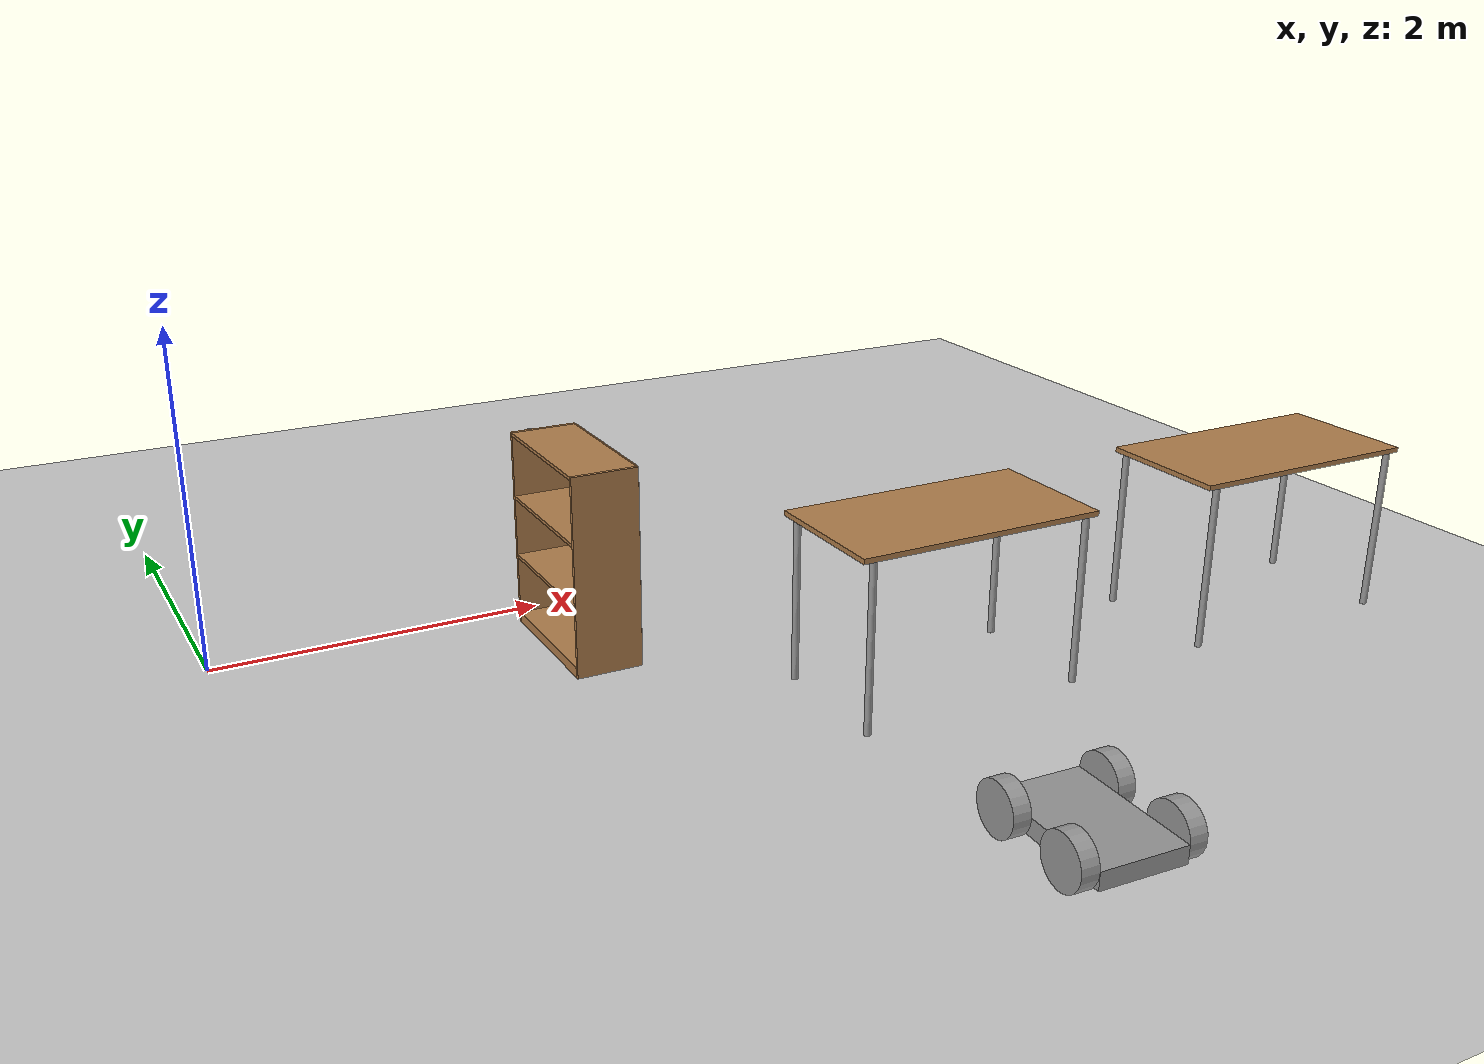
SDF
<sdf version="1.6">
 <world name="default">
  <model name="ground_plane">
   <static>1</static>
   <link name="link">
    <collision name="collision">
     <geometry><plane><normal>0 0 1</normal><size>100 100</size></plane></geometry>
     <surface><friction><ode><mu>100</mu><mu2>50</mu2></ode></friction></surface>
    </collision>
    <visual name="visual">
     <cast_shadows>0</cast_shadows>
     <geometry><plane><normal>0 0 1</normal><size>100 100</size></plane></geometry>
     <material>
      <script><uri>file://media/materials/scripts/gazebo.material</uri><name>Gazebo/Grey</name></script>
     </material>
    </visual>
   </link>
  </model>
  <model name="bookshelf_1">
   <static>1</static>
   <link name="link">
    <inertial><mass>1</mass></inertial>
    <collision name="back">
     <pose>0 0.005 0.6 0 -0 0</pose>
     <geometry><box><size>0.9 0.01 1.2</size></box></geometry>
    </collision>
    <visual name="visual1">
     <pose>0 0.005 0.6 0 -0 0</pose>
     <geometry><box><size>0.9 0.01 1.2</size></box></geometry>
     <material>
      <script><uri>file://media/materials/scripts/gazebo.material</uri><name>Gazebo/Wood</name></script>
     </material>
    </visual>
    <collision name="left_side">
     <pose>0.45 -0.195 0.6 0 -0 0</pose>
     <geometry><box><size>0.02 0.4 1.2</size></box></geometry>
    </collision>
    <visual name="visual2">
     <pose>0.45 -0.195 0.6 0 -0 0</pose>
     <geometry><box><size>0.02 0.4 1.2</size></box></geometry>
     <material>
      <script><uri>file://media/materials/scripts/gazebo.material</uri><name>Gazebo/Wood</name></script>
     </material>
    </visual>
    <collision name="right_side">
     <pose>-0.45 -0.195 0.6 0 -0 0</pose>
     <geometry><box><size>0.02 0.4 1.2</size></box></geometry>
    </collision>
    <visual name="visual3">
     <pose>-0.45 -0.195 0.6 0 -0 0</pose>
     <geometry><box><size>0.02 0.4 1.2</size></box></geometry>
     <material>
      <script><uri>file://media/materials/scripts/gazebo.material</uri><name>Gazebo/Wood</name></script>
     </material>
    </visual>
    <collision name="bottom">
     <pose>0 -0.195 0.03 0 -0 0</pose>
     <geometry><box><size>0.88 0.4 0.06</size></box></geometry>
    </collision>
    <visual name="visual4">
     <pose>0 -0.195 0.03 0 -0 0</pose>
     <geometry><box><size>0.88 0.4 0.06</size></box></geometry>
     <material>
      <script><uri>file://media/materials/scripts/gazebo.material</uri><name>Gazebo/Wood</name></script>
     </material>
    </visual>
    <collision name="top">
     <pose>0 -0.195 1.19 0 -0 0</pose>
     <geometry><box><size>0.88 0.4 0.02</size></box></geometry>
    </collision>
    <visual name="visual5">
     <pose>0 -0.195 1.19 0 -0 0</pose>
     <geometry><box><size>0.88 0.4 0.02</size></box></geometry>
     <material>
      <script><uri>file://media/materials/scripts/gazebo.material</uri><name>Gazebo/Wood</name></script>
     </material>
    </visual>
    <collision name="low_shelf">
     <pose>0 -0.195 0.43 0 -0 0</pose>
     <geometry><box><size>0.88 0.4 0.02</size></box></geometry>
    </collision>
    <visual name="visual6">
     <pose>0 -0.195 0.43 0 -0 0</pose>
     <geometry><box><size>0.88 0.4 0.02</size></box></geometry>
     <material>
      <script><uri>file://media/materials/scripts/gazebo.material</uri><name>Gazebo/Wood</name></script>
     </material>
    </visual>
    <collision name="high_shelf">
     <pose>0 -0.195 0.8 0 -0 0</pose>
     <geometry><box><size>0.88 0.4 0.02</size></box></geometry>
    </collision>
    <visual name="visual7">
     <pose>0 -0.195 0.8 0 -0 0</pose>
     <geometry><box><size>0.88 0.4 0.02</size></box></geometry>
     <material>
      <script><uri>file://media/materials/scripts/gazebo.material</uri><name>Gazebo/Wood</name></script>
     </material>
    </visual>
   </link>
   <pose>2.2247 -0.625547 0 0 0 -1.58004</pose>
  </model>
  <model name="table_0">
   <static>1</static>
   <link name="link">
    <collision name="surface">
     <pose>0 0 1 0 -0 0</pose>
     <geometry><box><size>1.5 0.8 0.03</size></box></geometry>
     <surface><friction><ode><mu>0.6</mu><mu2>0.6</mu2></ode></friction></surface>
    </collision>
    <visual name="visual1">
     <pose>0 0 1 0 -0 0</pose>
     <geometry><box><size>1.5 0.8 0.03</size></box></geometry>
     <material>
      <script><uri>file://media/materials/scripts/gazebo.material</uri><name>Gazebo/Wood</name></script>
     </material>
    </visual>
    <collision name="front_left_leg">
     <pose>0.68 0.38 0.5 0 -0 0</pose>
     <geometry><cylinder><radius>0.02</radius><length>1</length></cylinder></geometry>
    </collision>
    <visual name="front_left_leg">
     <pose>0.68 0.38 0.5 0 -0 0</pose>
     <geometry><cylinder><radius>0.02</radius><length>1</length></cylinder></geometry>
     <material>
      <script><uri>file://media/materials/scripts/gazebo.material</uri><name>Gazebo/Grey</name></script>
     </material>
    </visual>
    <collision name="front_right_leg">
     <pose>0.68 -0.38 0.5 0 -0 0</pose>
     <geometry><cylinder><radius>0.02</radius><length>1</length></cylinder></geometry>
    </collision>
    <visual name="front_right_leg">
     <pose>0.68 -0.38 0.5 0 -0 0</pose>
     <geometry><cylinder><radius>0.02</radius><length>1</length></cylinder></geometry>
     <material>
      <script><uri>file://media/materials/scripts/gazebo.material</uri><name>Gazebo/Grey</name></script>
     </material>
    </visual>
    <collision name="back_right_leg">
     <pose>-0.68 -0.38 0.5 0 -0 0</pose>
     <geometry><cylinder><radius>0.02</radius><length>1</length></cylinder></geometry>
    </collision>
    <visual name="back_right_leg">
     <pose>-0.68 -0.38 0.5 0 -0 0</pose>
     <geometry><cylinder><radius>0.02</radius><length>1</length></cylinder></geometry>
     <material>
      <script><uri>file://media/materials/scripts/gazebo.material</uri><name>Gazebo/Grey</name></script>
     </material>
    </visual>
    <collision name="back_left_leg">
     <pose>-0.68 0.38 0.5 0 -0 0</pose>
     <geometry><cylinder><radius>0.02</radius><length>1</length></cylinder></geometry>
    </collision>
    <visual name="back_left_leg">
     <pose>-0.68 0.38 0.5 0 -0 0</pose>
     <geometry><cylinder><radius>0.02</radius><length>1</length></cylinder></geometry>
     <material>
      <script><uri>file://media/materials/scripts/gazebo.material</uri><name>Gazebo/Grey</name></script>
     </material>
    </visual>
   </link>
   <pose>3.59261 -2.02108 0 0 -0 0</pose>
  </model>
  <model name="table_1">
   <static>1</static>
   <link name="link">
    <collision name="surface">
     <pose>0 0 1 0 -0 0</pose>
     <geometry><box><size>1.5 0.8 0.03</size></box></geometry>
     <surface><friction><ode><mu>0.6</mu><mu2>0.6</mu2></ode></friction></surface>
    </collision>
    <visual name="visual1">
     <pose>0 0 1 0 -0 0</pose>
     <geometry><box><size>1.5 0.8 0.03</size></box></geometry>
     <material>
      <script><uri>file://media/materials/scripts/gazebo.material</uri><name>Gazebo/Wood</name></script>
     </material>
    </visual>
    <collision name="front_left_leg">
     <pose>0.68 0.38 0.5 0 -0 0</pose>
     <geometry><cylinder><radius>0.02</radius><length>1</length></cylinder></geometry>
    </collision>
    <visual name="front_left_leg">
     <pose>0.68 0.38 0.5 0 -0 0</pose>
     <geometry><cylinder><radius>0.02</radius><length>1</length></cylinder></geometry>
     <material>
      <script><uri>file://media/materials/scripts/gazebo.material</uri><name>Gazebo/Grey</name></script>
     </material>
    </visual>
    <collision name="front_right_leg">
     <pose>0.68 -0.38 0.5 0 -0 0</pose>
     <geometry><cylinder><radius>0.02</radius><length>1</length></cylinder></geometry>
    </collision>
    <visual name="front_right_leg">
     <pose>0.68 -0.38 0.5 0 -0 0</pose>
     <geometry><cylinder><radius>0.02</radius><length>1</length></cylinder></geometry>
     <material>
      <script><uri>file://media/materials/scripts/gazebo.material</uri><name>Gazebo/Grey</name></script>
     </material>
    </visual>
    <collision name="back_right_leg">
     <pose>-0.68 -0.38 0.5 0 -0 0</pose>
     <geometry><cylinder><radius>0.02</radius><length>1</length></cylinder></geometry>
    </collision>
    <visual name="back_right_leg">
     <pose>-0.68 -0.38 0.5 0 -0 0</pose>
     <geometry><cylinder><radius>0.02</radius><length>1</length></cylinder></geometry>
     <material>
      <script><uri>file://media/materials/scripts/gazebo.material</uri><name>Gazebo/Grey</name></script>
     </material>
    </visual>
    <collision name="back_left_leg">
     <pose>-0.68 0.38 0.5 0 -0 0</pose>
     <geometry><cylinder><radius>0.02</radius><length>1</length></cylinder></geometry>
    </collision>
    <visual name="back_left_leg">
     <pose>-0.68 0.38 0.5 0 -0 0</pose>
     <geometry><cylinder><radius>0.02</radius><length>1</length></cylinder></geometry>
     <material>
      <script><uri>file://media/materials/scripts/gazebo.material</uri><name>Gazebo/Grey</name></script>
     </material>
    </visual>
   </link>
   <pose>5.91265 -1.99673 0 0 -0 0</pose>
  </model>
  <model name="car_bot_clone">
   <link name="link">
    <pose>0 0 0.2 0 -0 0</pose>
    <inertial>
     <mass>1</mass>
     <inertia>
      <ixx>0.166667</ixx>
      <ixy>0</ixy>
      <ixz>0</ixz>
      <iyy>0.166667</iyy>
      <iyz>0</iyz>
      <izz>0.166667</izz>
     </inertia>
    </inertial>
    <visual name="visual">
     <geometry><box><size>0.8 0.5 0.1</size></box></geometry>
     <material>
      <script><name>Gazebo/Grey</name><uri>file://media/materials/scripts/gazebo.material</uri></script>
      <shader type="pixel"><normal_map>__default__</normal_map></shader>
      <ambient>0.3 0.3 0.3 1</ambient>
      <diffuse>0.7 0.7 0.7 1</diffuse>
      <specular>0.01 0.01 0.01 1</specular>
      <emissive>0 0 0 1</emissive>
     </material>
    </visual>
    <collision name="collision">
     <geometry><box><size>0.8 0.5 0.1</size></box></geometry>
     <surface>
      <friction>
       <ode><mu>1</mu><mu2>1</mu2><fdir1>0 0 0</fdir1><slip1>0</slip1><slip2>0</slip2></ode>
       <torsional>
        <coefficient>1</coefficient>
        <patch_radius>0</patch_radius>
        <surface_radius>0</surface_radius>
        <use_patch_radius>1</use_patch_radius>
        <ode><slip>0</slip></ode>
       </torsional>
      </friction>
      <bounce><restitution_coefficient>0</restitution_coefficient><threshold>1e+06</threshold></bounce>
      <contact>
       <collide_without_contact>0</collide_without_contact>
       <collide_without_contact_bitmask>1</collide_without_contact_bitmask>
       <collide_bitmask>1</collide_bitmask>
       <ode>
        <soft_cfm>0</soft_cfm>
        <soft_erp>0.2</soft_erp>
        <kp>1e+13</kp>
        <kd>1</kd>
        <max_vel>0.01</max_vel>
        <min_depth>0</min_depth>
       </ode>
       <bullet>
        <split_impulse>1</split_impulse>
        <split_impulse_penetration_threshold>-0.01</split_impulse_penetration_threshold>
        <soft_cfm>0</soft_cfm>
        <soft_erp>0.2</soft_erp>
        <kp>1e+13</kp>
        <kd>1</kd>
       </bullet>
      </contact>
     </surface>
    </collision>
   </link>
   <link name="link_1">
    <pose>-0.25 -0.30063 0.245186 1.575 -0 0</pose>
    <inertial>
     <mass>1</mass>
     <inertia><ixx>0.145833</ixx><ixy>0</ixy><ixz>0</ixz><iyy>0.145833</iyy><iyz>0</iyz><izz>0.125</izz></inertia>
    </inertial>
    <visual name="visual">
     <geometry><cylinder><radius>0.15</radius><length>0.1</length></cylinder></geometry>
     <material>
      <lighting>1</lighting>
      <script><uri>file://media/materials/scripts/gazebo.material</uri><name>Gazebo/Grey</name></script>
      <shader type="pixel"><normal_map>__default__</normal_map></shader>
      <ambient>0.3 0.3 0.3 1</ambient>
      <diffuse>0.7 0.7 0.7 1</diffuse>
      <specular>0.01 0.01 0.01 1</specular>
      <emissive>0 0 0 1</emissive>
     </material>
    </visual>
    <collision name="collision">
     <geometry><cylinder><radius>0.15</radius><length>0.1</length></cylinder></geometry>
     <surface>
      <friction>
       <ode><mu>1</mu><mu2>1</mu2><fdir1>0 0 0</fdir1><slip1>0</slip1><slip2>0</slip2></ode>
       <torsional>
        <coefficient>1</coefficient>
        <patch_radius>0</patch_radius>
        <surface_radius>0</surface_radius>
        <use_patch_radius>1</use_patch_radius>
        <ode><slip>0</slip></ode>
       </torsional>
      </friction>
      <bounce><restitution_coefficient>0</restitution_coefficient><threshold>1e+06</threshold></bounce>
      <contact>
       <collide_without_contact>0</collide_without_contact>
       <collide_without_contact_bitmask>1</collide_without_contact_bitmask>
       <collide_bitmask>1</collide_bitmask>
       <ode>
        <soft_cfm>0</soft_cfm>
        <soft_erp>0.2</soft_erp>
        <kp>1e+13</kp>
        <kd>1</kd>
        <max_vel>0.01</max_vel>
        <min_depth>0</min_depth>
       </ode>
       <bullet>
        <split_impulse>1</split_impulse>
        <split_impulse_penetration_threshold>-0.01</split_impulse_penetration_threshold>
        <soft_cfm>0</soft_cfm>
        <soft_erp>0.2</soft_erp>
        <kp>1e+13</kp>
        <kd>1</kd>
       </bullet>
      </contact>
     </surface>
    </collision>
   </link>
   <link name="link_1_clone">
    <pose>-0.25 0.300631 0.245003 1.57501 -0 0</pose>
    <inertial>
     <mass>1</mass>
     <inertia><ixx>0.145833</ixx><ixy>0</ixy><ixz>0</ixz><iyy>0.145833</iyy><iyz>0</iyz><izz>0.125</izz></inertia>
    </inertial>
    <visual name="visual">
     <geometry><cylinder><radius>0.15</radius><length>0.1</length></cylinder></geometry>
     <material>
      <lighting>1</lighting>
      <script><uri>file://media/materials/scripts/gazebo.material</uri><name>Gazebo/Grey</name></script>
      <shader type="pixel"><normal_map>__default__</normal_map></shader>
      <ambient>0.3 0.3 0.3 1</ambient>
      <diffuse>0.7 0.7 0.7 1</diffuse>
      <specular>0.01 0.01 0.01 1</specular>
      <emissive>0 0 0 1</emissive>
     </material>
    </visual>
    <collision name="collision">
     <geometry><cylinder><radius>0.15</radius><length>0.1</length></cylinder></geometry>
     <surface>
      <friction>
       <ode><mu>1</mu><mu2>1</mu2><fdir1>0 0 0</fdir1><slip1>0</slip1><slip2>0</slip2></ode>
       <torsional>
        <coefficient>1</coefficient>
        <patch_radius>0</patch_radius>
        <surface_radius>0</surface_radius>
        <use_patch_radius>1</use_patch_radius>
        <ode><slip>0</slip></ode>
       </torsional>
      </friction>
      <bounce><restitution_coefficient>0</restitution_coefficient><threshold>1e+06</threshold></bounce>
      <contact>
       <collide_without_contact>0</collide_without_contact>
       <collide_without_contact_bitmask>1</collide_without_contact_bitmask>
       <collide_bitmask>1</collide_bitmask>
       <ode>
        <soft_cfm>0</soft_cfm>
        <soft_erp>0.2</soft_erp>
        <kp>1e+13</kp>
        <kd>1</kd>
        <max_vel>0.01</max_vel>
        <min_depth>0</min_depth>
       </ode>
       <bullet>
        <split_impulse>1</split_impulse>
        <split_impulse_penetration_threshold>-0.01</split_impulse_penetration_threshold>
        <soft_cfm>0</soft_cfm>
        <soft_erp>0.2</soft_erp>
        <kp>1e+13</kp>
        <kd>1</kd>
       </bullet>
      </contact>
     </surface>
    </collision>
   </link>
   <link name="link_1_clone_0_clone">
    <pose>0.25 -0.300633 0.244997 1.57502 -0 0</pose>
    <inertial>
     <mass>1</mass>
     <inertia><ixx>0.145833</ixx><ixy>0</ixy><ixz>0</ixz><iyy>0.145833</iyy><iyz>0</iyz><izz>0.125</izz></inertia>
    </inertial>
    <visual name="visual">
     <geometry><cylinder><radius>0.15</radius><length>0.1</length></cylinder></geometry>
     <material>
      <lighting>1</lighting>
      <script><uri>file://media/materials/scripts/gazebo.material</uri><name>Gazebo/Grey</name></script>
      <shader type="pixel"><normal_map>__default__</normal_map></shader>
      <ambient>0.3 0.3 0.3 1</ambient>
      <diffuse>0.7 0.7 0.7 1</diffuse>
      <specular>0.01 0.01 0.01 1</specular>
      <emissive>0 0 0 1</emissive>
     </material>
    </visual>
    <collision name="collision">
     <geometry><cylinder><radius>0.15</radius><length>0.1</length></cylinder></geometry>
     <surface>
      <friction>
       <ode><mu>1</mu><mu2>1</mu2><fdir1>0 0 0</fdir1><slip1>0</slip1><slip2>0</slip2></ode>
       <torsional>
        <coefficient>1</coefficient>
        <patch_radius>0</patch_radius>
        <surface_radius>0</surface_radius>
        <use_patch_radius>1</use_patch_radius>
        <ode><slip>0</slip></ode>
       </torsional>
      </friction>
      <bounce><restitution_coefficient>0</restitution_coefficient><threshold>1e+06</threshold></bounce>
      <contact>
       <collide_without_contact>0</collide_without_contact>
       <collide_without_contact_bitmask>1</collide_without_contact_bitmask>
       <collide_bitmask>1</collide_bitmask>
       <ode>
        <soft_cfm>0</soft_cfm>
        <soft_erp>0.2</soft_erp>
        <kp>1e+13</kp>
        <kd>1</kd>
        <max_vel>0.01</max_vel>
        <min_depth>0</min_depth>
       </ode>
       <bullet>
        <split_impulse>1</split_impulse>
        <split_impulse_penetration_threshold>-0.01</split_impulse_penetration_threshold>
        <soft_cfm>0</soft_cfm>
        <soft_erp>0.2</soft_erp>
        <kp>1e+13</kp>
        <kd>1</kd>
       </bullet>
      </contact>
     </surface>
    </collision>
   </link>
   <link name="link_1_clone_0_clone_clone">
    <pose>0.25 0.300634 0.245003 1.57503 -0 0</pose>
    <inertial>
     <mass>1</mass>
     <inertia><ixx>0.145833</ixx><ixy>0</ixy><ixz>0</ixz><iyy>0.145833</iyy><iyz>0</iyz><izz>0.125</izz></inertia>
    </inertial>
    <visual name="visual">
     <geometry><cylinder><radius>0.15</radius><length>0.1</length></cylinder></geometry>
     <material>
      <lighting>1</lighting>
      <script><uri>file://media/materials/scripts/gazebo.material</uri><name>Gazebo/Grey</name></script>
      <shader type="pixel"><normal_map>__default__</normal_map></shader>
      <ambient>0.3 0.3 0.3 1</ambient>
      <diffuse>0.7 0.7 0.7 1</diffuse>
      <specular>0.01 0.01 0.01 1</specular>
      <emissive>0 0 0 1</emissive>
     </material>
    </visual>
    <collision name="collision">
     <geometry><cylinder><radius>0.15</radius><length>0.1</length></cylinder></geometry>
     <surface>
      <friction>
       <ode><mu>1</mu><mu2>1</mu2><fdir1>0 0 0</fdir1><slip1>0</slip1><slip2>0</slip2></ode>
       <torsional>
        <coefficient>1</coefficient>
        <patch_radius>0</patch_radius>
        <surface_radius>0</surface_radius>
        <use_patch_radius>1</use_patch_radius>
        <ode><slip>0</slip></ode>
       </torsional>
      </friction>
      <bounce><restitution_coefficient>0</restitution_coefficient><threshold>1e+06</threshold></bounce>
      <contact>
       <collide_without_contact>0</collide_without_contact>
       <collide_without_contact_bitmask>1</collide_without_contact_bitmask>
       <collide_bitmask>1</collide_bitmask>
       <ode>
        <soft_cfm>0</soft_cfm>
        <soft_erp>0.2</soft_erp>
        <kp>1e+13</kp>
        <kd>1</kd>
        <max_vel>0.01</max_vel>
        <min_depth>0</min_depth>
       </ode>
       <bullet>
        <split_impulse>1</split_impulse>
        <split_impulse_penetration_threshold>-0.01</split_impulse_penetration_threshold>
        <soft_cfm>0</soft_cfm>
        <soft_erp>0.2</soft_erp>
        <kp>1e+13</kp>
        <kd>1</kd>
       </bullet>
      </contact>
     </surface>
    </collision>
   </link>
   <joint name="link_JOINT_3" type="revolute">
    <parent>link</parent>
    <child>link_1_clone_0_clone_clone</child>
    <axis>
     <xyz>1 0 0</xyz>
     <use_parent_model_frame>0</use_parent_model_frame>
     <limit>
      <lower>-1.79769e+308</lower>
      <upper>1.79769e+308</upper>
      <effort>-1</effort>
      <velocity>-1</velocity>
     </limit>
     <dynamics>
      <spring_reference>0</spring_reference>
      <spring_stiffness>0</spring_stiffness>
      <damping>0</damping>
     </dynamics>
     <use_parent_model_frame>1</use_parent_model_frame>
    </axis>
    <physics>
     <ode><limit><cfm>0</cfm><erp>0.2</erp></limit><suspension><cfm>0</cfm><erp>0.2</erp></suspension></ode>
    </physics>
   </joint>
   <joint name="link_JOINT_4" type="revolute">
    <parent>link</parent>
    <child>link_1_clone_0_clone</child>
    <axis>
     <xyz>1 0 0</xyz>
     <use_parent_model_frame>0</use_parent_model_frame>
     <limit>
      <lower>-1.79769e+308</lower>
      <upper>1.79769e+308</upper>
      <effort>-1</effort>
      <velocity>-1</velocity>
     </limit>
     <dynamics>
      <spring_reference>0</spring_reference>
      <spring_stiffness>0</spring_stiffness>
      <damping>0</damping>
     </dynamics>
     <use_parent_model_frame>1</use_parent_model_frame>
    </axis>
    <physics>
     <ode><limit><cfm>0</cfm><erp>0.2</erp></limit><suspension><cfm>0</cfm><erp>0.2</erp></suspension></ode>
    </physics>
   </joint>
   <joint name="link_JOINT_5" type="revolute">
    <parent>link</parent>
    <child>link_1_clone_0_clone</child>
    <axis>
     <xyz>1 0 0</xyz>
     <use_parent_model_frame>0</use_parent_model_frame>
     <limit>
      <lower>-1.79769e+308</lower>
      <upper>1.79769e+308</upper>
      <effort>-1</effort>
      <velocity>-1</velocity>
     </limit>
     <dynamics>
      <spring_reference>0</spring_reference>
      <spring_stiffness>0</spring_stiffness>
      <damping>0</damping>
     </dynamics>
     <use_parent_model_frame>1</use_parent_model_frame>
    </axis>
    <physics>
     <ode><limit><cfm>0</cfm><erp>0.2</erp></limit><suspension><cfm>0</cfm><erp>0.2</erp></suspension></ode>
    </physics>
   </joint>
   <joint name="link_JOINT_6" type="revolute">
    <parent>link</parent>
    <child>link_1</child>
    <axis>
     <xyz>1 0 0</xyz>
     <use_parent_model_frame>0</use_parent_model_frame>
     <limit>
      <lower>-1.79769e+308</lower>
      <upper>1.79769e+308</upper>
      <effort>-1</effort>
      <velocity>-1</velocity>
     </limit>
     <dynamics>
      <spring_reference>0</spring_reference>
      <spring_stiffness>0</spring_stiffness>
      <damping>0</damping>
     </dynamics>
     <use_parent_model_frame>1</use_parent_model_frame>
    </axis>
    <physics>
     <ode><limit><cfm>0</cfm><erp>0.2</erp></limit><suspension><cfm>0</cfm><erp>0.2</erp></suspension></ode>
    </physics>
   </joint>
   <joint name="link_JOINT_7" type="revolute">
    <parent>link</parent>
    <child>link_1_clone</child>
    <axis>
     <xyz>1 0 0</xyz>
     <use_parent_model_frame>0</use_parent_model_frame>
     <limit>
      <lower>-1.79769e+308</lower>
      <upper>1.79769e+308</upper>
      <effort>-1</effort>
      <velocity>-1</velocity>
     </limit>
     <dynamics>
      <spring_reference>0</spring_reference>
      <spring_stiffness>0</spring_stiffness>
      <damping>0</damping>
     </dynamics>
     <use_parent_model_frame>1</use_parent_model_frame>
    </axis>
    <physics>
     <ode><limit><cfm>0</cfm><erp>0.2</erp></limit><suspension><cfm>0</cfm><erp>0.2</erp></suspension></ode>
    </physics>
   </joint>
   <static>0</static>
   <pose>3.22937 -3.79348 -0.095004 0.00031 -0.000371 -1.60274</pose>
  </model>
  <model name="my_ball">
   <link name="link">
    <inertial>
     <mass>1</mass>
     <inertia><ixx>0.1</ixx><ixy>0</ixy><ixz>0</ixz><iyy>0.1</iyy><iyz>0</iyz><izz>0.1</izz></inertia>
    </inertial>
    <visual name="visual">
     <geometry><sphere><radius>0.1</radius></sphere></geometry>
     <material>
      <script><name>Gazebo/Grey</name><uri>file://media/materials/scripts/gazebo.material</uri></script>
      <shader type="pixel"><normal_map>__default__</normal_map></shader>
      <ambient>1 1 1 1</ambient>
      <diffuse>1 1 1 1</diffuse>
      <specular>1 1 1 1</specular>
      <emissive>1 1 1 1</emissive>
     </material>
    </visual>
    <collision name="collision">
     <geometry><sphere><radius>0.1</radius></sphere></geometry>
     <surface>
      <friction>
       <ode><mu>1</mu><mu2>1</mu2><fdir1>0 0 0</fdir1><slip1>0</slip1><slip2>0</slip2></ode>
       <torsional>
        <coefficient>1</coefficient>
        <patch_radius>0</patch_radius>
        <surface_radius>0</surface_radius>
        <use_patch_radius>1</use_patch_radius>
        <ode><slip>0</slip></ode>
       </torsional>
      </friction>
      <bounce><restitution_coefficient>0</restitution_coefficient><threshold>1e+06</threshold></bounce>
      <contact>
       <collide_without_contact>0</collide_without_contact>
       <collide_without_contact_bitmask>1</collide_without_contact_bitmask>
       <collide_bitmask>1</collide_bitmask>
       <ode>
        <soft_cfm>0</soft_cfm>
        <soft_erp>0.2</soft_erp>
        <kp>1e+13</kp>
        <kd>1</kd>
        <max_vel>0.01</max_vel>
        <min_depth>0</min_depth>
       </ode>
       <bullet>
        <split_impulse>1</split_impulse>
        <split_impulse_penetration_threshold>-0.01</split_impulse_penetration_threshold>
        <soft_cfm>0</soft_cfm>
        <soft_erp>0.2</soft_erp>
        <kp>1e+13</kp>
        <kd>1</kd>
       </bullet>
      </contact>
     </surface>
    </collision>
   </link>
   <static>0</static>
   <pose>3.09111 2.84809 0.1 0 -0 0</pose>
  </model>
 </world>
</sdf>
